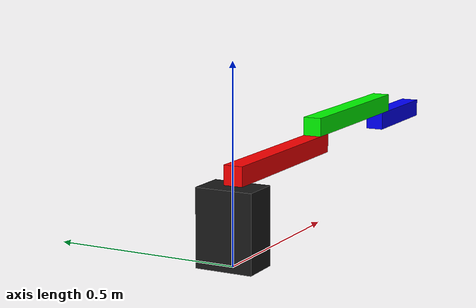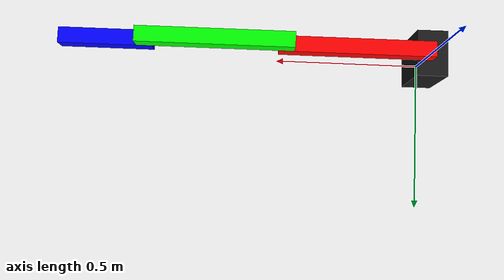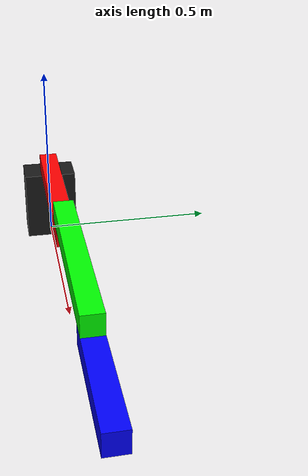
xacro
<?xml version="1.0" encoding="utf-8"?>
<!--Aqui comienza el robot-->
<robot name="robot_scara" xmlns:xacro="http://ros.org/wiki/xacro" >

    <link name="world">
    </link>

    <joint name="world_joint" type="fixed">
        <parent link="world"/>
        <child link="base_link"/>
        <origin xyz="0 0 0" rpy="0 0 0"/>
    </joint>

    <link name="base_link">
        <visual>
            <origin xyz="0.0 0.0 0.1" rpy="0 0 0" />
            <geometry>
                <box size="0.1 0.15 0.2" />
            </geometry>
            <material name="grey">
                <color rgba="0.1 0.1 0.1 1.0" />
            </material>
        </visual>
        <collision>
            <origin xyz="0.0 0.0 0.1" rpy="0 0 0" />
            <geometry>
                <box size="0.1 0.15 0.2" />
            </geometry>
        </collision>
        <inertial>
            <origin xyz="0 0 0" rpy="0 0 0"/>
            <mass value="1"/>
            <inertia ixx="1.0" ixy="0.0" ixz="0.0"
                iyy="1.0" iyz="0.0" izz="1.0"/>
        </inertial>
    </link>

    <link name="link_1">
        <visual>
            <origin xyz="0.25 0.0 0.0" rpy="0 0 0" />
            <geometry>
                <box size="0.5 0.05 0.05" />
            </geometry>
            <material name="red">
                <color rgba="1 0.0 0.0 1.0"/>
            </material>
        </visual>
        <collision>
            <origin xyz="0.25 0.0 0.0" rpy="0 0 0" />
            <geometry>
                <box size="0.5 0.05 0.05" />
            </geometry>
        </collision>
        <inertial>
            <origin xyz="0 0 0" rpy="0 0 0"/>
            <mass value="1"/>
            <inertia ixx="1.0" ixy="0.0" ixz="0.0"
                iyy="1.0" iyz="0.0" izz="1.0"/>
        </inertial>
    </link>

    <joint name="link_1_joint" type="revolute">
        <parent link="base_link"/>
        <child link="link_1"/>
        <axis xyz="0 0 1"/>
        <limit lower="-3.14159" upper="3.14159" velocity="50.0"
               effort="1000.0"/>
        <origin xyz="0 0 0.225" rpy="0 0 0"/>
    </joint>

    <link name="link_2">
        <visual>
            <origin xyz="0.25 0.0 0.0" rpy="0 0 0" />
            <geometry>
                <box size="0.5 0.05 0.05" />
            </geometry>
            <material name="green">
                <color rgba="0.0 1.0 0.0 1.0" />
            </material>
        </visual>
        <collision>
            <origin xyz="0.25 0.0 0.0" rpy="0 0 0" />
            <geometry>
                <box size="0.5 0.05 0.05" />
            </geometry>
        </collision>
        <inertial>
            <origin xyz="0 0 0" rpy="0 0 0"/>
            <mass value="1"/>
            <inertia ixx="1.0" ixy="0.0" ixz="0.0"
                iyy="1.0" iyz="0.0" izz="1.0"/>
        </inertial>
    </link>

    <joint name="link_2_joint" type="revolute">
        <parent link="link_1"/>
        <child link="link_2"/>
        <axis xyz="0 0 1"/>
        <limit lower="-3.14159" upper="3.14159" velocity="50.0"
               effort="1000.0"/>
        <origin xyz="0.45 0 0.05" rpy="0 0 0"/>
    </joint>

    <link name="link_3">
        <visual>
            <origin xyz="0.15 0.0 0.0" rpy="0 0 0" />
            <geometry>
                <box size="0.3 0.05 0.05" />
            </geometry>
            <material name="blue">
                <color rgba="0.0 0.0 1.0 1.0" />
            </material>
        </visual>
        <collision>
            <origin xyz="0.15 0.0 0.0" rpy="0 0 0" />
            <geometry>
                <box size="0.3 0.05 0.05" />
            </geometry>
        </collision>
        <inertial>
            <origin xyz="0 0 0" rpy="0 0 0"/>
            <mass value="1"/>
            <inertia ixx="1.0" ixy="0.0" ixz="0.0"
                iyy="1.0" iyz="0.0" izz="1.0"/>
        </inertial>
    </link>

    <joint name="link_3_joint" type="revolute">
        <parent link="link_2"/>
        <child link="link_3"/>
        <axis xyz="0 0 1"/>
        <limit lower="-3.14159" upper="3.14159" velocity="50.0"
               effort="1000.0"/>
        <origin xyz="0.45 0 -0.05" rpy="0 0 0"/>
    </joint>

    <link name="P">
    </link>

    <joint name="link_P_joint" type="fixed">
        <parent link="link_3"/>
        <child link="P"/>
        <origin xyz="0.25 0 0" rpy="0 0 0"/>
    </joint>

</robot>
